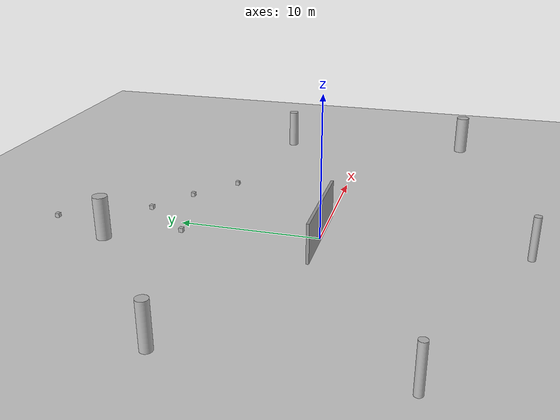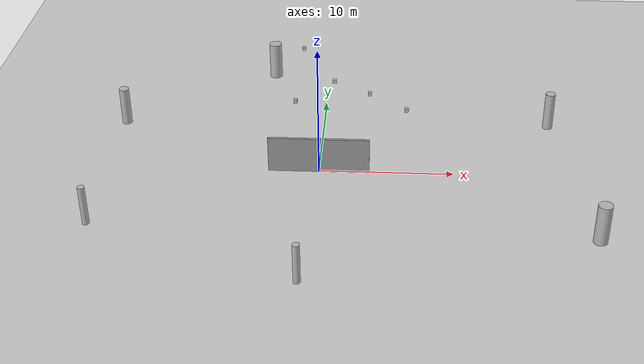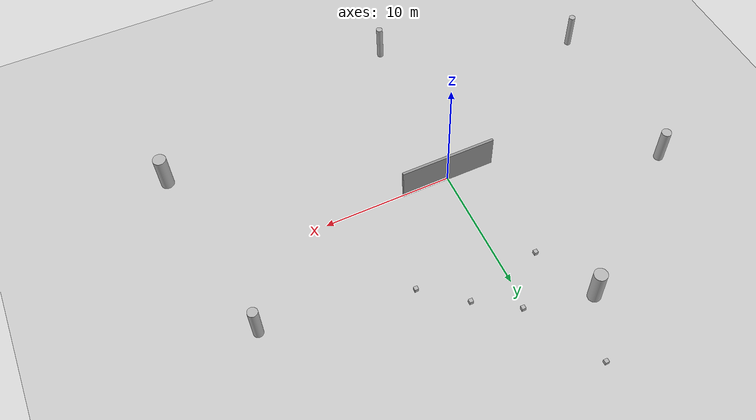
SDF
<?xml version="1.0" ?>
<sdf version="1.6">
    <world name="default">

        <!-- Light source -->
        <include>
            <uri>model://sun</uri>
        </include>

        <!-- Ground plane -->
        <include>
            <uri>model://ground_plane</uri>
        </include>

        <!-- Wall model -->
        <model name="grey_wall">
            <static>true</static>
            <pose>0 0 0 0 0 0</pose>
            <include>
                <uri>model://grey_wall</uri>
            </include>
        </model>

        <!-- Cube object -->
        <model name="cube_object">
            <pose>0.5 0 0.5 0 0 0</pose>
            <include>
                <uri>model://cube</uri>
            </include>
        </model>

        <!-- Cylinder object -->
        <model name="cylinder_object">
            <pose>-0.5 0 0.5 0 0 0</pose>
            <include>
                <uri>model://cylinder</uri>
            </include>
        </model>

    </world>
</sdf>

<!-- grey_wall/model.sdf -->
<sdf version="1.5">
  <model name="grey_wall">
    <static>true</static>
    <link name="link">
      <pose>0 0 1.4 0 0 0</pose>
      <collision name="collision">
        <geometry>
          <box>
            <size>7.5 0.2 2.8</size>
          </box>
        </geometry>
      </collision>
      <visual name="visual">
        <cast_shadows>false</cast_shadows>
        <geometry>
          <box>
            <size>7.5 0.2 2.8</size>
          </box>
        </geometry>
        <material>
          <script>
            <uri>model://../model_source/models/grey_wall/materials/scripts</uri>
            <uri>model://../model_source/models/grey_wall/materials/textures</uri>
            <name>vrc/grey_wall</name>
          </script>
        </material>
      </visual>
    </link>
  </model>
</sdf>

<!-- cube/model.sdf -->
<sdf version="1.5">
    <model name="cube">
        <static>true</static>
        <link name="link">
            <collision name="collision1">
                <pose>0 12.5 0.1 0 0 0</pose>
                <geometry>
                    <mesh>
                        <uri>model://cube/meshes/cube.dae</uri>
                    </mesh>
                </geometry>
            </collision>
            <visual name="visual1">

              <pose>0 12.5 0.1 0 0 0</pose>
              <geometry>
              <mesh>
                 <uri>model://cube/meshes/cube.dae</uri>
              </mesh>
              </geometry>

              <material>
                  <script>
                      <uri>model://cube/materials/scripts</uri>
                      <uri>model://cube/materials/textures</uri>
                      <name>cubeMat/Diffuse</name>
                  </script>
              </material>
             </visual>

             <collision name="collision2">
                <pose>3 10.5 0.1 0 0 0</pose>
                <geometry>
                    <mesh>
                        <uri>model://cube/meshes/cube.dae</uri>
                    </mesh>
                </geometry>
            </collision>
            <visual name="visual2">

              <pose>3 10.5 0.1 0 0 0</pose>
              <geometry>
              <mesh>
                 <uri>model://cube/meshes/cube.dae</uri>
              </mesh>
              </geometry>

              <material>
                  <script>
                      <uri>model://cube/materials/scripts</uri>
                      <uri>model://cube/materials/textures</uri>
                      <name>cubeMat/Diffuse</name>
                  </script>
              </material>
             </visual>

             <collision name="collision3">
                <pose>-3 9 0.1 0 0 0</pose>
                <geometry>
                    <mesh>
                        <uri>model://cube/meshes/cube.dae</uri>
                    </mesh>
                </geometry>
            </collision>
            <visual name="visual3">

              <pose>-3 9 0.1 0 0 0</pose>
              <geometry>
              <mesh>
                 <uri>model://cube/meshes/cube.dae</uri>
              </mesh>
              </geometry>

              <material>
                  <script>
                      <uri>model://cube/materials/scripts</uri>
                      <uri>model://cube/materials/textures</uri>
                      <name>cubeMat/Diffuse</name>
                  </script>
              </material>
             </visual>

             <collision name="collision4">
                <pose>6 8 0.1 0 0 0</pose>
                <geometry>
                    <mesh>
                        <uri>model://cube/meshes/cube.dae</uri>
                    </mesh>
                </geometry>
            </collision>
            <visual name="visual4">

              <pose>6 8 0.1 0 0 0</pose>
              <geometry>
              <mesh>
                 <uri>model://cube/meshes/cube.dae</uri>
              </mesh>
              </geometry>

              <material>
                  <script>
                      <uri>model://cube/materials/scripts</uri>
                      <uri>model://cube/materials/textures</uri>
                      <name>cubeMat/Diffuse</name>
                  </script>
              </material>
             </visual>

             <collision name="collision5">
                <pose>-3 18.3 0.1 0 0 0</pose>
                <geometry>
                    <mesh>
                        <uri>model://cube/meshes/cube.dae</uri>
                    </mesh>
                </geometry>
            </collision>
            <visual name="visual5">

              <pose>-3 18.3 0.1 0 0 0</pose>
              <geometry>
              <mesh>
                 <uri>model://cube/meshes/cube.dae</uri>
              </mesh>
              </geometry>

              <material>
                  <script>
                      <uri>model://cube/materials/scripts</uri>
                      <uri>model://cube/materials/textures</uri>
                      <name>cubeMat/Diffuse</name>
                  </script>
              </material>
             </visual>
        </link>
    </model>
</sdf>

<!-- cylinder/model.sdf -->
<sdf version="1.5">
    <model name="cylinder">
        <static>true</static>
        <link name="link">
            <collision name="collision1">
                <pose>20 -8.4 0 0 0 0</pose>
                <geometry>
                    <mesh>
                        <uri>model://cylinder/meshes/cylinder_1.stl</uri>
                    </mesh>
                </geometry>
            </collision>
            <visual name="visual1">

              <pose>20 -8.4 0 0 0 0</pose>
              <geometry>
              <mesh>
                 <uri>model://cylinder/meshes/cylinder_1.dae</uri>
              </mesh>
              </geometry>

              <material>
                  <script>
                      <uri>model://cylinder/materials/scripts</uri>
                      <uri>model://cylinder/materials/textures</uri>
                      <name>cylinderMat/Diffuse</name>
                  </script>
              </material>
             </visual>

             <collision name="collision2">
                <pose>-4 13.7 0 0 0 0</pose>
                <geometry>
                    <mesh>
                        <uri>model://cylinder/meshes/cylinder_1.stl</uri>
                    </mesh>
                </geometry>
            </collision>
            <visual name="visual2">

              <pose>-4 13.7 0 0 0 0</pose>
              <geometry>
              <mesh>
                 <uri>model://cylinder/meshes/cylinder_1.dae</uri>
              </mesh>
              </geometry>

              <material>
                  <script>
                      <uri>model://cylinder/materials/scripts</uri>
                      <uri>model://cylinder/materials/textures</uri>
                      <name>cylinderMat/Diffuse</name>
                  </script>
              </material>
             </visual>

             <collision name="collision3">
                <pose>-15 -8 0 0 0 0</pose>
                <geometry>
                    <mesh>
                        <uri>model://cylinder/meshes/cylinder_0_5.stl</uri>
                    </mesh>
                </geometry>
            </collision>
            <visual name="visual3">

              <pose>-15 -8 0 0 0 0</pose>
              <geometry>
              <mesh>
                 <uri>model://cylinder/meshes/cylinder_0_5.dae</uri>
              </mesh>
              </geometry>

              <material>
                  <script>
                      <uri>model://cylinder/materials/scripts</uri>
                      <uri>model://cylinder/materials/textures</uri>
                      <name>cylinderMat/Diffuse</name>
                  </script>
              </material>
             </visual>

             <collision name="collision4">
                <pose>0 -13.6 0 0 0 0</pose>
                <geometry>
                    <mesh>
                        <uri>model://cylinder/meshes/cylinder_0_5.stl</uri>
                    </mesh>
                </geometry>
            </collision>
            <visual name="visual4">

              <pose>0 -13.6 0 0 0 0</pose>
              <geometry>
              <mesh>
                 <uri>model://cylinder/meshes/cylinder_0_5.dae</uri>
              </mesh>
              </geometry>

              <material>
                  <script>
                      <uri>model://cylinder/materials/scripts</uri>
                      <uri>model://cylinder/materials/textures</uri>
                      <name>cylinderMat/Diffuse</name>
                  </script>
              </material>
             </visual>

             <collision name="collision5">
                <pose>18 6.3 0 0 0 0</pose>
                <geometry>
                    <mesh>
                        <uri>model://cylinder/meshes/cylinder_0_75.stl</uri>
                    </mesh>
                </geometry>
            </collision>
            <visual name="visual5">

              <pose>18 6.3 0 0 0 0</pose>
              <geometry>
              <mesh>
                 <uri>model://cylinder/meshes/cylinder_0_75.dae</uri>
              </mesh>
              </geometry>

              <material>
                  <script>
                      <uri>model://cylinder/materials/scripts</uri>
                      <uri>model://cylinder/materials/textures</uri>
                      <name>cylinderMat/Diffuse</name>
                  </script>
              </material>
             </visual>

             <collision name="collision6">
                <pose>-15 5.5 0 0 0 0</pose>
                <geometry>
                    <mesh>
                        <uri>model://cylinder/meshes/cylinder_0_75.stl</uri>
                    </mesh>
                </geometry>
            </collision>
            <visual name="visual6">

              <pose>-15 5.5 0 0 0 0</pose>
              <geometry>
              <mesh>
                 <uri>model://cylinder/meshes/cylinder_0_75.dae</uri>
              </mesh>
              </geometry>

              <material>
                  <script>
                      <uri>model://cylinder/materials/scripts</uri>
                      <uri>model://cylinder/materials/textures</uri>
                      <name>cylinderMat/Diffuse</name>
                  </script>
              </material>
             </visual>

        </link>
    </model>
</sdf>
